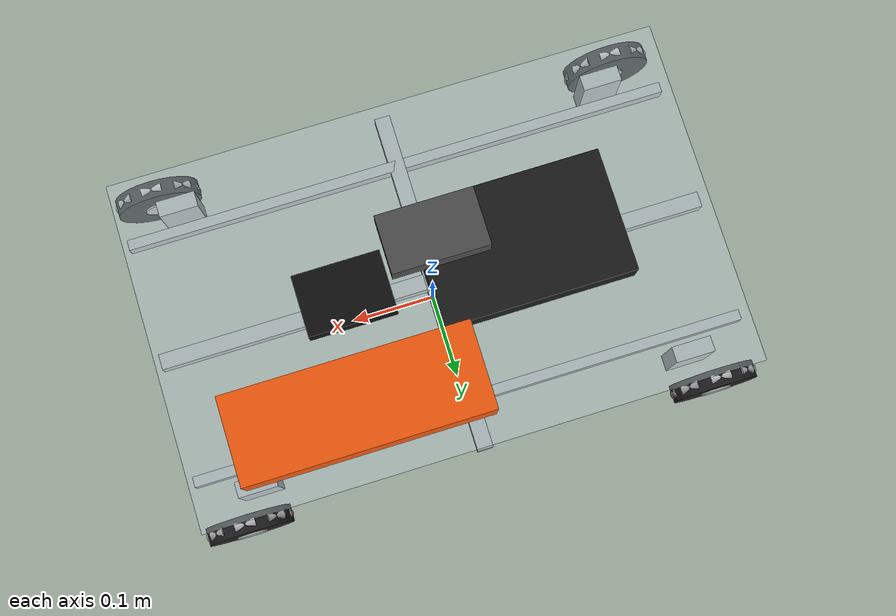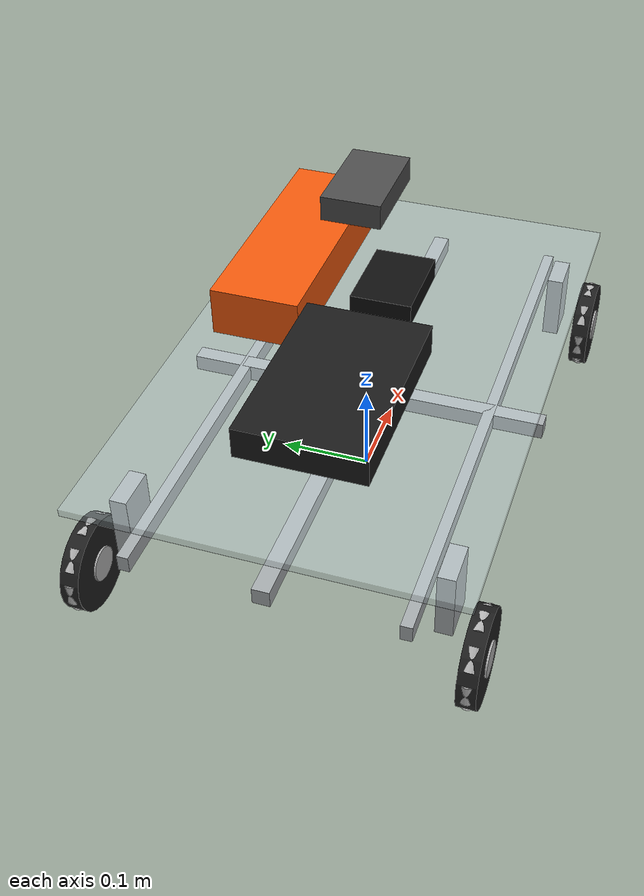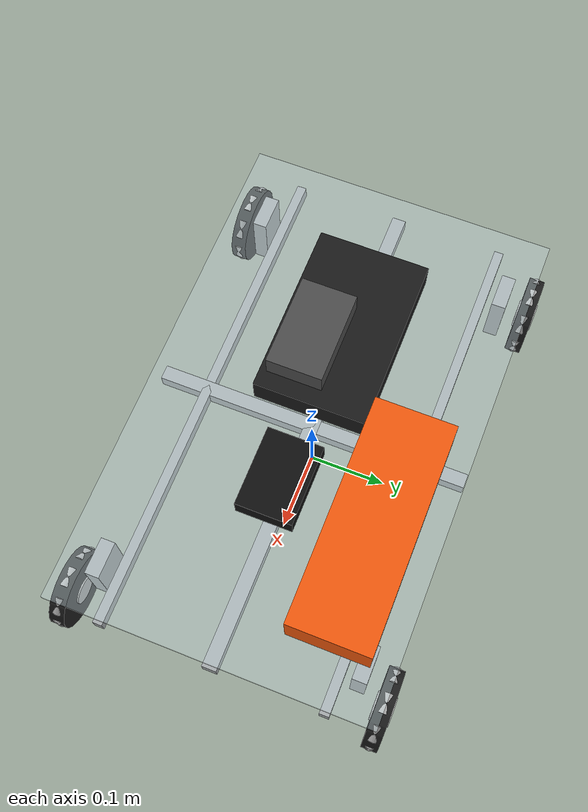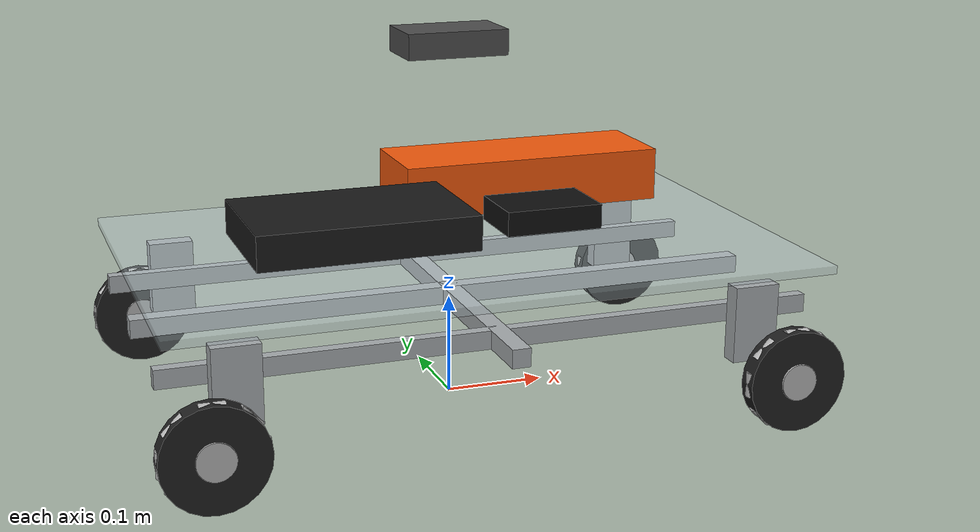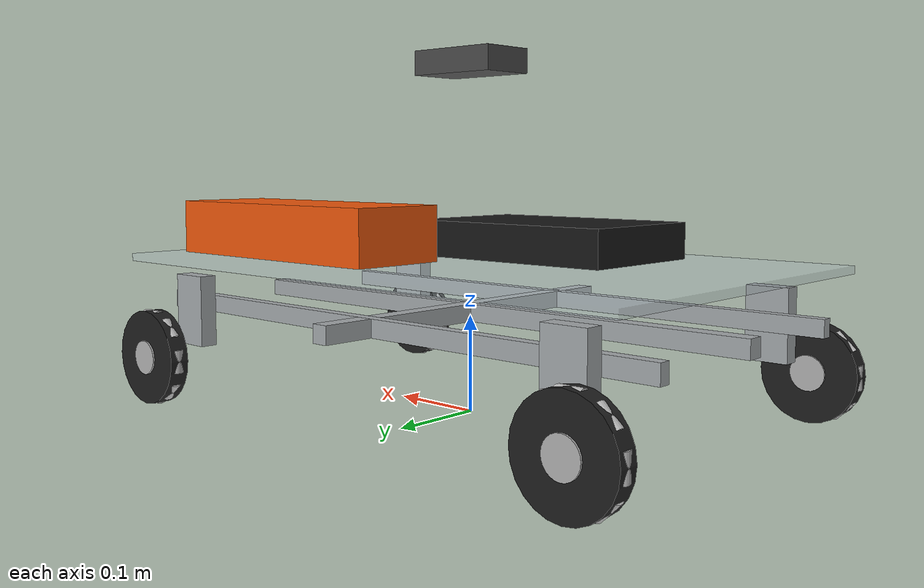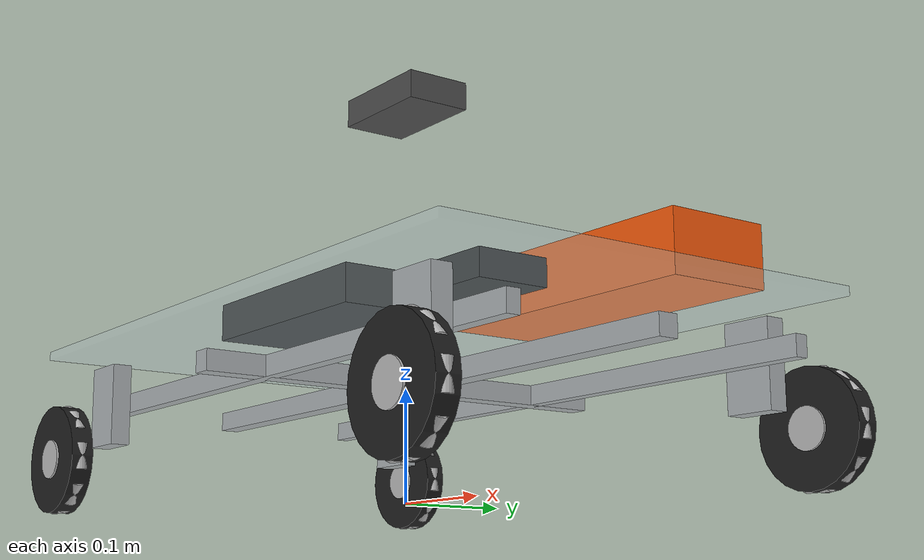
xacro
<?xml version="1.0"?>
<robot name="qbotix_rover" xmlns:xacro="http://www.ros.org/wiki/xacro">

  <!-- PROVISIONAL ROBOT DIMENSIONS: metres; measure the physical robot before Nav2 or motor actuation. -->
  <xacro:property name="chassis_length" value="0.64"/>
  <xacro:property name="chassis_width" value="0.40"/>
  <xacro:property name="chassis_height" value="0.11"/>
  <xacro:property name="plate_thickness" value="0.008"/>
  <xacro:property name="wheel_radius" value="0.05"/>
  <xacro:property name="wheel_width" value="0.02"/>
  <xacro:property name="wheel_x_offset" value="0.28"/>
  <xacro:property name="wheel_y_offset" value="0.20"/>

  <!-- GROUND REFERENCE -->
  <link name="base_footprint"/>

  <!-- MAIN ROBOT BODY -->
  <link name="base_link">

    <!-- Transparent acrylic top plate -->
    <visual>
      <origin xyz="0 0 0.05" rpy="0 0 0"/>
      <geometry>
        <box size="${chassis_length} ${chassis_width} ${plate_thickness}"/>
      </geometry>
      <material name="clear_acrylic">
        <color rgba="0.80 0.88 0.90 0.35"/>
      </material>
    </visual>

    <!-- Aluminium frame rails -->
    <visual>
      <origin xyz="0 0 0"/>
      <geometry>
        <box size="${chassis_length} 0.018 0.018"/>
      </geometry>
      <material name="aluminium">
        <color rgba="0.65 0.67 0.68 1"/>
      </material>
    </visual>

    <visual>
      <origin xyz="0 0 0"/>
      <geometry>
        <box size="0.018 ${chassis_width} 0.018"/>
      </geometry>
      <material name="aluminium"/>
    </visual>

    <visual>
      <origin xyz="0 0.14 0"/>
      <geometry>
        <box size="${chassis_length} 0.012 0.018"/>
      </geometry>
      <material name="aluminium"/>
    </visual>

    <visual>
      <origin xyz="0 -0.14 0"/>
      <geometry>
        <box size="${chassis_length} 0.012 0.018"/>
      </geometry>
      <material name="aluminium"/>
    </visual>

    <!-- Chassis collision geometry -->
    <collision>
      <origin xyz="0 0 0"/>
      <geometry>
        <box size="${chassis_length} ${chassis_width} 0.018"/>
      </geometry>
    </collision>

    <inertial>
      <origin xyz="0 0 0"/>
      <mass value="8.0"/>
      <inertia
        ixx="0.1289" ixy="0" ixz="0"
        iyy="0.2833" iyz="0"
        izz="0.3563"/>
    </inertial>

  </link>

  <!-- Ground reference to chassis. Geometry is provisional until physically measured. -->
  <joint name="base_footprint_joint" type="fixed">
    <parent link="base_footprint"/>
    <child link="base_link"/>
    <origin xyz="0 0 ${wheel_radius + chassis_height/2}" rpy="0 0 0"/>
  </joint>

  <!-- OMNI WHEEL MODEL -->
  <xacro:macro name="omni_wheel" params="name x y">

    <link name="${name}_link">

      <!-- Main wheel -->
      <visual>
        <origin xyz="0 0 0" rpy="1.57079632679 0 0"/>
        <geometry>
          <cylinder radius="${wheel_radius}" length="${wheel_width}"/>
        </geometry>
        <material name="wheel_black">
          <color rgba="0.12 0.12 0.12 1"/>
        </material>
      </visual>

      <!-- Central hub -->
      <visual>
        <origin xyz="0 0 0" rpy="1.57079632679 0 0"/>
        <geometry>
          <cylinder radius="0.018" length="0.024"/>
        </geometry>
        <material name="wheel_hub">
          <color rgba="0.70 0.70 0.70 1"/>
        </material>
      </visual>

      <!-- Eight simplified roller visuals -->
      <xacro:property name="roller_radius" value="0.009"/>
      <xacro:property name="roller_length" value="0.024"/>
      <xacro:property name="roller_ring_radius" value="0.041"/>

      <xacro:property name="a0" value="0.0"/>
      <xacro:property name="a1" value="0.7853981634"/>
      <xacro:property name="a2" value="1.5707963268"/>
      <xacro:property name="a3" value="2.3561944902"/>
      <xacro:property name="a4" value="3.1415926536"/>
      <xacro:property name="a5" value="3.9269908170"/>
      <xacro:property name="a6" value="4.7123889804"/>
      <xacro:property name="a7" value="5.4977871438"/>

      <visual>
        <origin xyz="${roller_ring_radius*cos(a0)} 0 ${roller_ring_radius*sin(a0)}"
                rpy="0 ${-a0} 0"/>
        <geometry>
          <cylinder radius="${roller_radius}" length="${roller_length}"/>
        </geometry>
        <material name="roller_grey">
          <color rgba="0.72 0.72 0.72 1"/>
        </material>
      </visual>

      <visual>
        <origin xyz="${roller_ring_radius*cos(a1)} 0 ${roller_ring_radius*sin(a1)}"
                rpy="0 ${-a1} 0"/>
        <geometry>
          <cylinder radius="${roller_radius}" length="${roller_length}"/>
        </geometry>
        <material name="roller_grey"/>
      </visual>

      <visual>
        <origin xyz="${roller_ring_radius*cos(a2)} 0 ${roller_ring_radius*sin(a2)}"
                rpy="0 ${-a2} 0"/>
        <geometry>
          <cylinder radius="${roller_radius}" length="${roller_length}"/>
        </geometry>
        <material name="roller_grey"/>
      </visual>

      <visual>
        <origin xyz="${roller_ring_radius*cos(a3)} 0 ${roller_ring_radius*sin(a3)}"
                rpy="0 ${-a3} 0"/>
        <geometry>
          <cylinder radius="${roller_radius}" length="${roller_length}"/>
        </geometry>
        <material name="roller_grey"/>
      </visual>

      <visual>
        <origin xyz="${roller_ring_radius*cos(a4)} 0 ${roller_ring_radius*sin(a4)}"
                rpy="0 ${-a4} 0"/>
        <geometry>
          <cylinder radius="${roller_radius}" length="${roller_length}"/>
        </geometry>
        <material name="roller_grey"/>
      </visual>

      <visual>
        <origin xyz="${roller_ring_radius*cos(a5)} 0 ${roller_ring_radius*sin(a5)}"
                rpy="0 ${-a5} 0"/>
        <geometry>
          <cylinder radius="${roller_radius}" length="${roller_length}"/>
        </geometry>
        <material name="roller_grey"/>
      </visual>

      <visual>
        <origin xyz="${roller_ring_radius*cos(a6)} 0 ${roller_ring_radius*sin(a6)}"
                rpy="0 ${-a6} 0"/>
        <geometry>
          <cylinder radius="${roller_radius}" length="${roller_length}"/>
        </geometry>
        <material name="roller_grey"/>
      </visual>

      <visual>
        <origin xyz="${roller_ring_radius*cos(a7)} 0 ${roller_ring_radius*sin(a7)}"
                rpy="0 ${-a7} 0"/>
        <geometry>
          <cylinder radius="${roller_radius}" length="${roller_length}"/>
        </geometry>
        <material name="roller_grey"/>
      </visual>

      <collision>
        <origin xyz="0 0 0" rpy="1.57079632679 0 0"/>
        <geometry>
          <cylinder radius="${wheel_radius}" length="${wheel_width}"/>
        </geometry>
      </collision>

      <inertial>
        <origin xyz="0 0 0"/>
        <mass value="0.5"/>
        <inertia
          ixx="0.0004" ixy="0" ixz="0"
          iyy="0.000625" iyz="0"
          izz="0.0004"/>
      </inertial>

    </link>

    <!-- Wheel joint -->
    <joint name="${name}_joint" type="continuous">
      <parent link="base_link"/>
      <child link="${name}_link"/>
      <origin xyz="${x} ${y} ${-chassis_height/2}" rpy="0 0 0"/>
      <axis xyz="0 1 0"/>
    </joint>

    <!-- Aluminium wheel mounting bracket -->
    <link name="${name}_bracket_link">
      <visual>
        <origin xyz="0 0 0"/>
        <geometry>
          <box size="0.045 0.018 0.075"/>
        </geometry>
        <material name="bracket_aluminium">
          <color rgba="0.65 0.67 0.68 1"/>
        </material>
      </visual>
    </link>

    <joint name="${name}_bracket_joint" type="fixed">
      <parent link="base_link"/>
      <child link="${name}_bracket_link"/>
      <origin xyz="${x*0.90} ${y*0.82} -0.005"/>
    </joint>

  </xacro:macro>

  <!-- Four omni wheels -->
  <xacro:omni_wheel name="front_left_wheel"
                    x="${wheel_x_offset}" y="${wheel_y_offset}"/>

  <xacro:omni_wheel name="front_right_wheel"
                    x="${wheel_x_offset}" y="${-wheel_y_offset}"/>

  <xacro:omni_wheel name="rear_left_wheel"
                    x="${-wheel_x_offset}" y="${wheel_y_offset}"/>

  <xacro:omni_wheel name="rear_right_wheel"
                    x="${-wheel_x_offset}" y="${-wheel_y_offset}"/>

  <!-- JETSON COMPUTER -->
  <link name="jetson_link">
    <visual>
      <geometry>
        <box size="0.22 0.14 0.035"/>
      </geometry>
      <material name="jetson_black">
        <color rgba="0.10 0.10 0.10 1"/>
      </material>
    </visual>
  </link>

  <joint name="jetson_mount_joint" type="fixed">
    <parent link="base_link"/>
    <child link="jetson_link"/>
    <origin xyz="-0.10 0 0.080"/>
  </joint>

  <!-- CYTRON MOTOR DRIVER -->
  <link name="motor_driver_link">
    <visual>
      <geometry>
        <box size="0.10 0.07 0.025"/>
      </geometry>
      <material name="driver_black">
        <color rgba="0.06 0.06 0.06 1"/>
      </material>
    </visual>
  </link>

  <joint name="motor_driver_mount_joint" type="fixed">
    <parent link="base_link"/>
    <child link="motor_driver_link"/>
    <origin xyz="0.10 0 0.075"/>
  </joint>

  <!-- BATTERY -->
  <link name="battery_link">
    <visual>
      <geometry>
        <box size="0.28 0.10 0.055"/>
      </geometry>
      <material name="battery_orange">
        <color rgba="0.95 0.35 0.05 1"/>
      </material>
    </visual>
  </link>

  <joint name="battery_mount_joint" type="fixed">
    <parent link="base_link"/>
    <child link="battery_link"/>
    <origin xyz="0.12 0.12 0.085"/>
  </joint>

  <!-- Visual representation of the physical camera mount. This link is a
       child of base_link and coincides with zed_camera_link in the model. -->
  <link name="zed_camera_mount_link">
    <visual>
      <geometry>
        <box size="0.10 0.06 0.025"/>
      </geometry>
      <material name="camera_grey">
        <color rgba="0.30 0.30 0.30 1"/>
      </material>
    </visual>
  </link>

  <joint name="zed_camera_mount_joint" type="fixed">
    <parent link="base_link"/>
    <child link="zed_camera_mount_link"/>
    <origin xyz="0 0 0.255" rpy="0 0 0"/>
  </joint>

  <link name="zed_camera_link"/>
  <joint name="zed_camera_link_joint" type="fixed">
    <parent link="zed_camera_mount_link"/>
    <child link="zed_camera_link"/>
    <origin xyz="0 0 0" rpy="0 0 0"/>
  </joint>

</robot>
